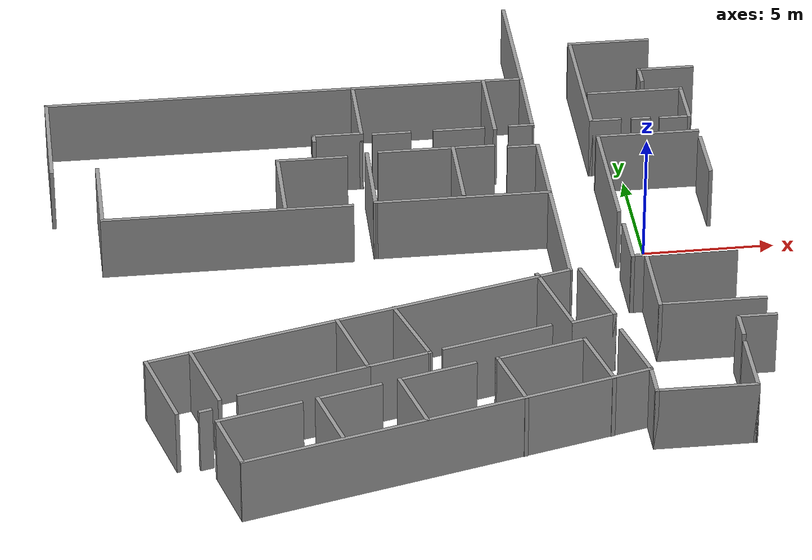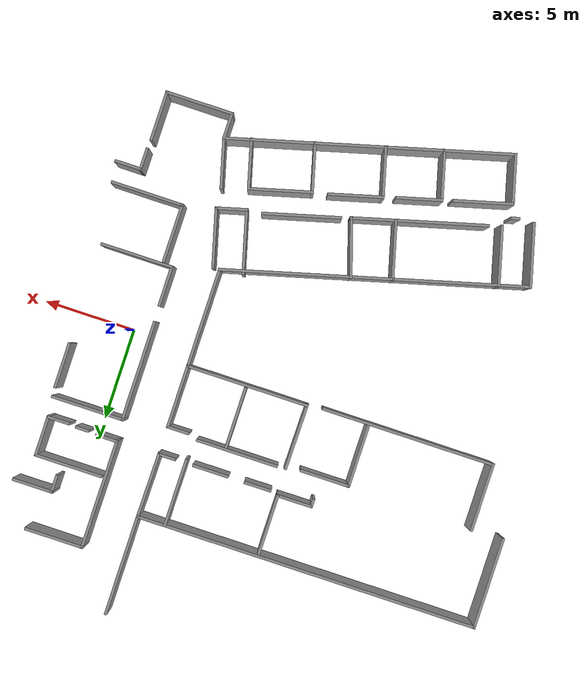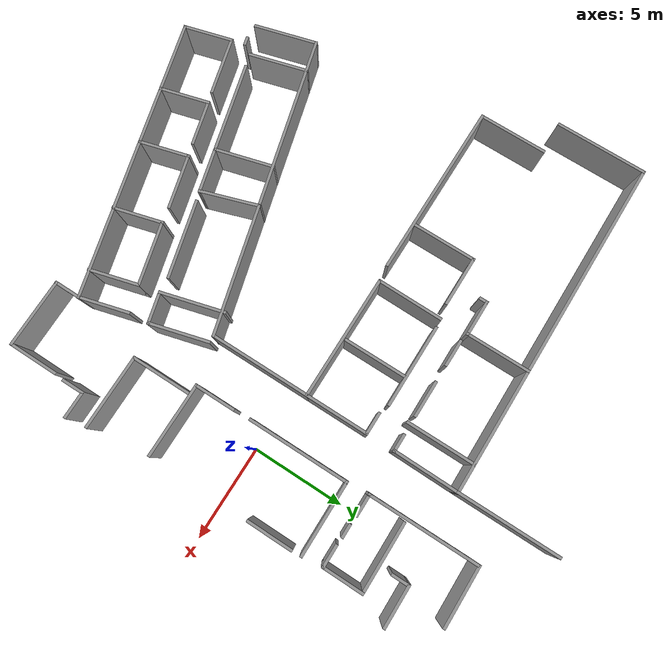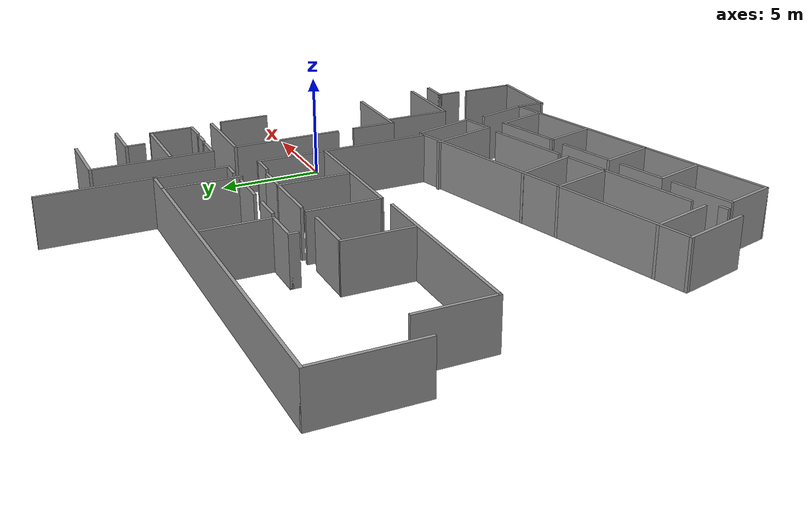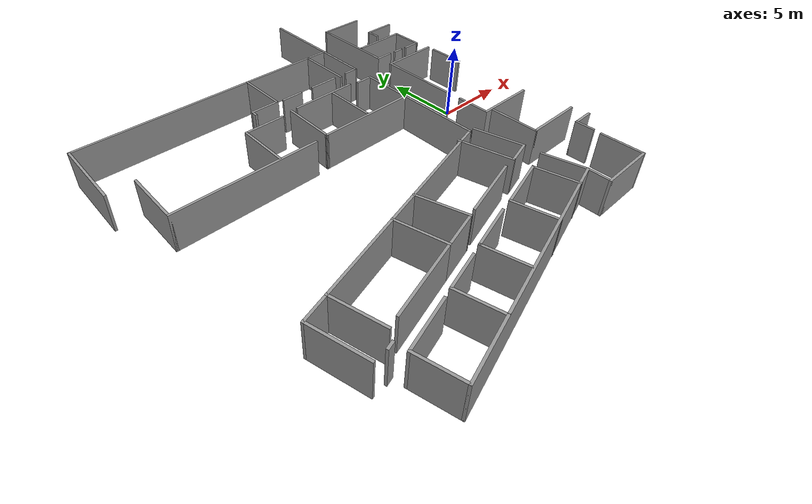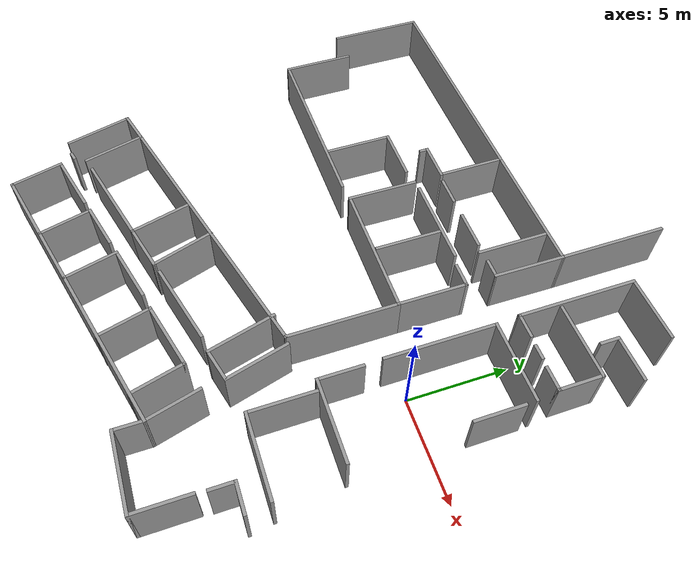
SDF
<sdf version="1.7">
 <model name="DohertyGazeboModel">
  <pose>0.626728 -0.28149 0 0 -0 0</pose>
  <link name="Wall_0">
   <collision name="Wall_0_Collision">
    <geometry><box><size>5 0.15 2.5</size></box></geometry>
    <pose>0 0 1.25 0 -0 0</pose>
   </collision>
   <visual name="Wall_0_Visual">
    <pose>0 0 1.25 0 -0 0</pose>
    <geometry><box><size>5 0.15 2.5</size></box></geometry>
    <material>
     <script><uri>file://media/materials/scripts/gazebo.material</uri><name>Gazebo/Grey</name></script>
     <ambient>1 1 1 1</ambient>
    </material>
    <meta><layer>0</layer></meta>
   </visual>
   <pose>-22.6913 7.0385 0 0 -0 1.5708</pose>
  </link>
  <link name="Wall_1">
   <collision name="Wall_1_Collision">
    <geometry><box><size>18.75 0.15 2.5</size></box></geometry>
    <pose>0 0 1.25 0 -0 0</pose>
   </collision>
   <visual name="Wall_1_Visual">
    <pose>0 0 1.25 0 -0 0</pose>
    <geometry><box><size>18.75 0.15 2.5</size></box></geometry>
    <material>
     <script><uri>file://media/materials/scripts/gazebo.material</uri><name>Gazebo/Grey</name></script>
     <ambient>1 1 1 1</ambient>
    </material>
    <meta><layer>0</layer></meta>
   </visual>
   <pose>-13.3913 9.4635 0 0 -0 0</pose>
  </link>
  <link name="Wall_10">
   <collision name="Wall_10_Collision">
    <geometry><box><size>3.75 0.15 2.5</size></box></geometry>
    <pose>0 0 1.25 0 -0 0</pose>
   </collision>
   <visual name="Wall_10_Visual">
    <pose>0 0 1.25 0 -0 0</pose>
    <geometry><box><size>3.75 0.15 2.5</size></box></geometry>
    <material>
     <script><uri>file://media/materials/scripts/gazebo.material</uri><name>Gazebo/Grey</name></script>
     <ambient>1 1 1 1</ambient>
    </material>
    <meta><layer>0</layer></meta>
   </visual>
   <pose>-20.9645 2.83778 0 0 -0 -1.5708</pose>
  </link>
  <link name="Wall_11">
   <collision name="Wall_11_Collision">
    <geometry><box><size>9.5 0.15 2.5</size></box></geometry>
    <pose>0 0 1.25 0 -0 0</pose>
   </collision>
   <visual name="Wall_11_Visual">
    <pose>0 0 1.25 0 -0 0</pose>
    <geometry><box><size>9.5 0.15 2.5</size></box></geometry>
    <material>
     <script><uri>file://media/materials/scripts/gazebo.material</uri><name>Gazebo/Grey</name></script>
     <ambient>1 1 1 1</ambient>
    </material>
    <meta><layer>0</layer></meta>
   </visual>
   <pose>-16.2895 1.03778 0 0 -0 0</pose>
  </link>
  <link name="Wall_116">
   <collision name="Wall_116_Collision">
    <geometry><box><size>1.25 0.15 2.5</size></box></geometry>
    <pose>0 0 1.25 0 -0 0</pose>
   </collision>
   <visual name="Wall_116_Visual">
    <pose>0 0 1.25 0 -0 0</pose>
    <geometry><box><size>1.25 0.15 2.5</size></box></geometry>
    <material>
     <script><uri>file://media/materials/scripts/gazebo.material</uri><name>Gazebo/Grey</name></script>
     <ambient>1 1 1 1</ambient>
    </material>
    <meta><layer>0</layer></meta>
   </visual>
   <pose>1.48424 -8.47099 0 0 -0 1.5708</pose>
  </link>
  <link name="Wall_117">
   <collision name="Wall_117_Collision">
    <geometry><box><size>1.5 0.15 2.5</size></box></geometry>
    <pose>0 0 1.25 0 -0 0</pose>
   </collision>
   <visual name="Wall_117_Visual">
    <pose>0 0 1.25 0 -0 0</pose>
    <geometry><box><size>1.5 0.15 2.5</size></box></geometry>
    <material>
     <script><uri>file://media/materials/scripts/gazebo.material</uri><name>Gazebo/Grey</name></script>
     <ambient>1 1 1 1</ambient>
    </material>
    <meta><layer>0</layer></meta>
   </visual>
   <pose>2.15924 -7.92099 0 0 -0 0</pose>
  </link>
  <link name="Wall_13">
   <collision name="Wall_13_Collision">
    <geometry><box><size>6.75 0.15 2.5</size></box></geometry>
    <pose>0 0 1.25 0 -0 0</pose>
   </collision>
   <visual name="Wall_13_Visual">
    <pose>0 0 1.25 0 -0 0</pose>
    <geometry><box><size>6.75 0.15 2.5</size></box></geometry>
    <material>
     <script><uri>file://media/materials/scripts/gazebo.material</uri><name>Gazebo/Grey</name></script>
     <ambient>1 1 1 1</ambient>
    </material>
    <meta><layer>0</layer></meta>
   </visual>
   <pose>-7.41613 1.1368 0 0 -0 0</pose>
  </link>
  <link name="Wall_130">
   <collision name="Wall_130_Collision">
    <geometry><box><size>2.25 0.15 2.5</size></box></geometry>
    <pose>0 0 1.25 0 -0 0</pose>
   </collision>
   <visual name="Wall_130_Visual">
    <pose>0 0 1.25 0 -0 0</pose>
    <geometry><box><size>2.25 0.15 2.5</size></box></geometry>
    <material>
     <script><uri>file://media/materials/scripts/gazebo.material</uri><name>Gazebo/Grey</name></script>
     <ambient>1 1 1 1</ambient>
    </material>
    <meta><layer>0</layer></meta>
   </visual>
   <pose>1.65333 9.64189 0 0 -0 3.14159</pose>
  </link>
  <link name="Wall_131">
   <collision name="Wall_131_Collision">
    <geometry><box><size>1 0.15 2.5</size></box></geometry>
    <pose>0 0 1.25 0 -0 0</pose>
   </collision>
   <visual name="Wall_131_Visual">
    <pose>0 0 1.25 0 -0 0</pose>
    <geometry><box><size>1 0.15 2.5</size></box></geometry>
    <material>
     <script><uri>file://media/materials/scripts/gazebo.material</uri><name>Gazebo/Grey</name></script>
     <ambient>1 1 1 1</ambient>
    </material>
    <meta><layer>0</layer></meta>
   </visual>
   <pose>0.603331 9.21689 0 0 -0 -1.5708</pose>
  </link>
  <link name="Wall_14">
   <collision name="Wall_14_Collision">
    <geometry><box><size>5.5 0.15 2.5</size></box></geometry>
    <pose>0 0 1.25 0 -0 0</pose>
   </collision>
   <visual name="Wall_14_Visual">
    <pose>0 0 1.25 0 -0 0</pose>
    <geometry><box><size>5.5 0.15 2.5</size></box></geometry>
    <material>
     <script><uri>file://media/materials/scripts/gazebo.material</uri><name>Gazebo/Grey</name></script>
     <ambient>1 1 1 1</ambient>
    </material>
    <meta><layer>0</layer></meta>
   </visual>
   <pose>-4.11613 -1.5382 0 0 -0 -1.5708</pose>
  </link>
  <link name="Wall_143">
   <collision name="Wall_143_Collision">
    <geometry><box><size>3.25 0.15 2.5</size></box></geometry>
    <pose>0 0 1.25 0 -0 0</pose>
   </collision>
   <visual name="Wall_143_Visual">
    <pose>0 0 1.25 0 -0 0</pose>
    <geometry><box><size>3.25 0.15 2.5</size></box></geometry>
    <material>
     <script><uri>file://media/materials/scripts/gazebo.material</uri><name>Gazebo/Grey</name></script>
     <ambient>1 1 1 1</ambient>
    </material>
    <meta><layer>0</layer></meta>
   </visual>
   <pose>-0.269694 11.9037 0 0 -0 3.14159</pose>
  </link>
  <link name="Wall_144">
   <collision name="Wall_144_Collision">
    <geometry><box><size>6 0.15 2.5</size></box></geometry>
    <pose>0 0 1.25 0 -0 0</pose>
   </collision>
   <visual name="Wall_144_Visual">
    <pose>0 0 1.25 0 -0 0</pose>
    <geometry><box><size>6 0.15 2.5</size></box></geometry>
    <material>
     <script><uri>file://media/materials/scripts/gazebo.material</uri><name>Gazebo/Grey</name></script>
     <ambient>1 1 1 1</ambient>
    </material>
    <meta><layer>0</layer></meta>
   </visual>
   <pose>-1.81969 8.9787 0 0 -0 -1.5708</pose>
  </link>
  <link name="Wall_145">
   <collision name="Wall_145_Collision">
    <geometry><box><size>1.25 0.15 2.5</size></box></geometry>
    <pose>0 0 1.25 0 -0 0</pose>
   </collision>
   <visual name="Wall_145_Visual">
    <pose>0 0 1.25 0 -0 0</pose>
    <geometry><box><size>1.25 0.15 2.5</size></box></geometry>
    <material>
     <script><uri>file://media/materials/scripts/gazebo.material</uri><name>Gazebo/Grey</name></script>
     <ambient>1 1 1 1</ambient>
    </material>
    <meta><layer>0</layer></meta>
   </visual>
   <pose>-1.26969 6.0537 0 0 -0 0</pose>
  </link>
  <link name="Wall_147">
   <collision name="Wall_147_Collision">
    <geometry><box><size>0.75 0.15 2.5</size></box></geometry>
    <pose>0 0 1.25 0 -0 0</pose>
   </collision>
   <visual name="Wall_147_Visual">
    <pose>0 0 1.25 0 -0 0</pose>
    <geometry><box><size>0.75 0.15 2.5</size></box></geometry>
    <material>
     <script><uri>file://media/materials/scripts/gazebo.material</uri><name>Gazebo/Grey</name></script>
     <ambient>1 1 1 1</ambient>
    </material>
    <meta><layer>0</layer></meta>
   </visual>
   <pose>0.115427 6.00233 0 0 -0 0</pose>
  </link>
  <link name="Wall_149">
   <collision name="Wall_149_Collision">
    <geometry><box><size>1.25 0.15 2.5</size></box></geometry>
    <pose>0 0 1.25 0 -0 0</pose>
   </collision>
   <visual name="Wall_149_Visual">
    <pose>0 0 1.25 0 -0 0</pose>
    <geometry><box><size>1.25 0.15 2.5</size></box></geometry>
    <material>
     <script><uri>file://media/materials/scripts/gazebo.material</uri><name>Gazebo/Grey</name></script>
     <ambient>1 1 1 1</ambient>
    </material>
    <meta><layer>0</layer></meta>
   </visual>
   <pose>1.45362 5.96048 0 0 -0 0</pose>
  </link>
  <link name="Wall_15">
   <collision name="Wall_15_Collision">
    <geometry><box><size>16.5 0.15 2.5</size></box></geometry>
    <pose>0 0 1.25 0 -0 0</pose>
   </collision>
   <visual name="Wall_15_Visual">
    <pose>0 0 1.25 0 -0 0</pose>
    <geometry><box><size>16.5 0.15 2.5</size></box></geometry>
    <material>
     <script><uri>file://media/materials/scripts/gazebo.material</uri><name>Gazebo/Grey</name></script>
     <ambient>1 1 1 1</ambient>
    </material>
    <meta><layer>0</layer></meta>
   </visual>
   <pose>-12.0126 -6.32905 0 0 -0 -2.87979</pose>
  </link>
  <link name="Wall_150">
   <collision name="Wall_150_Collision">
    <geometry><box><size>2.25 0.15 2.5</size></box></geometry>
    <pose>0 0 1.25 0 -0 0</pose>
   </collision>
   <visual name="Wall_150_Visual">
    <pose>0 0 1.25 0 -0 0</pose>
    <geometry><box><size>2.25 0.15 2.5</size></box></geometry>
    <material>
     <script><uri>file://media/materials/scripts/gazebo.material</uri><name>Gazebo/Grey</name></script>
     <ambient>1 1 1 1</ambient>
    </material>
    <meta><layer>0</layer></meta>
   </visual>
   <pose>2.00362 7.01048 0 0 -0 1.5708</pose>
  </link>
  <link name="Wall_151">
   <collision name="Wall_151_Collision">
    <geometry><box><size>3.75 0.15 2.5</size></box></geometry>
    <pose>0 0 1.25 0 -0 0</pose>
   </collision>
   <visual name="Wall_151_Visual">
    <pose>0 0 1.25 0 -0 0</pose>
    <geometry><box><size>3.75 0.15 2.5</size></box></geometry>
    <material>
     <script><uri>file://media/materials/scripts/gazebo.material</uri><name>Gazebo/Grey</name></script>
     <ambient>1 1 1 1</ambient>
    </material>
    <meta><layer>0</layer></meta>
   </visual>
   <pose>0.203623 8.06048 0 0 -0 3.14159</pose>
  </link>
  <link name="Wall_155">
   <collision name="Wall_155_Collision">
    <geometry><box><size>4 0.15 2.5</size></box></geometry>
    <pose>0 0 1.25 0 -0 0</pose>
   </collision>
   <visual name="Wall_155_Visual">
    <pose>0 0 1.25 0 -0 0</pose>
    <geometry><box><size>4 0.15 2.5</size></box></geometry>
    <material>
     <script><uri>file://media/materials/scripts/gazebo.material</uri><name>Gazebo/Grey</name></script>
     <ambient>1 1 1 1</ambient>
    </material>
    <meta><layer>0</layer></meta>
   </visual>
   <pose>0.19238 4.87228 0 0 -0 3.14159</pose>
  </link>
  <link name="Wall_156">
   <collision name="Wall_156_Collision">
    <geometry><box><size>5.5 0.15 2.5</size></box></geometry>
    <pose>0 0 1.25 0 -0 0</pose>
   </collision>
   <visual name="Wall_156_Visual">
    <pose>0 0 1.25 0 -0 0</pose>
    <geometry><box><size>5.5 0.15 2.5</size></box></geometry>
    <material>
     <script><uri>file://media/materials/scripts/gazebo.material</uri><name>Gazebo/Grey</name></script>
     <ambient>1 1 1 1</ambient>
    </material>
    <meta><layer>0</layer></meta>
   </visual>
   <pose>-1.73262 2.19728 0 0 -0 -1.5708</pose>
  </link>
  <link name="Wall_158">
   <collision name="Wall_158_Collision">
    <geometry><box><size>2.25 0.15 2.5</size></box></geometry>
    <pose>0 0 1.25 0 -0 0</pose>
   </collision>
   <visual name="Wall_158_Visual">
    <pose>0 0 1.25 0 -0 0</pose>
    <geometry><box><size>2.25 0.15 2.5</size></box></geometry>
    <material>
     <script><uri>file://media/materials/scripts/gazebo.material</uri><name>Gazebo/Grey</name></script>
     <ambient>1 1 1 1</ambient>
    </material>
    <meta><layer>0</layer></meta>
   </visual>
   <pose>-1.69131 -2.49763 0 0 -0 -1.5708</pose>
  </link>
  <link name="Wall_159">
   <collision name="Wall_159_Collision">
    <geometry><box><size>4 0.15 2.5</size></box></geometry>
    <pose>0 0 1.25 0 -0 0</pose>
   </collision>
   <visual name="Wall_159_Visual">
    <pose>0 0 1.25 0 -0 0</pose>
    <geometry><box><size>4 0.15 2.5</size></box></geometry>
    <material>
     <script><uri>file://media/materials/scripts/gazebo.material</uri><name>Gazebo/Grey</name></script>
     <ambient>1 1 1 1</ambient>
    </material>
    <meta><layer>0</layer></meta>
   </visual>
   <pose>0.233695 -3.54763 0 0 -0 0</pose>
  </link>
  <link name="Wall_16">
   <collision name="Wall_16_Collision">
    <geometry><box><size>3.5 0.15 2.5</size></box></geometry>
    <pose>0 0 1.25 0 -0 0</pose>
   </collision>
   <visual name="Wall_16_Visual">
    <pose>0 0 1.25 0 -0 0</pose>
    <geometry><box><size>3.5 0.15 2.5</size></box></geometry>
    <material>
     <script><uri>file://media/materials/scripts/gazebo.material</uri><name>Gazebo/Grey</name></script>
     <ambient>1 1 1 1</ambient>
    </material>
    <meta><layer>0</layer></meta>
   </visual>
   <pose>-19.4755 -10.0628 0 0 -0 -1.309</pose>
  </link>
  <link name="Wall_163">
   <collision name="Wall_163_Collision">
    <geometry><box><size>3.25 0.15 2.5</size></box></geometry>
    <pose>0 0 1.25 0 -0 0</pose>
   </collision>
   <visual name="Wall_163_Visual">
    <pose>0 0 1.25 0 -0 0</pose>
    <geometry><box><size>3.25 0.15 2.5</size></box></geometry>
    <material>
     <script><uri>file://media/materials/scripts/gazebo.material</uri><name>Gazebo/Grey</name></script>
     <ambient>1 1 1 1</ambient>
    </material>
    <meta><layer>0</layer></meta>
   </visual>
   <pose>-1.18906 -5.25772 0 0 -0 -1.5708</pose>
  </link>
  <link name="Wall_164">
   <collision name="Wall_164_Collision">
    <geometry><box><size>4 0.15 2.5</size></box></geometry>
    <pose>0 0 1.25 0 -0 0</pose>
   </collision>
   <visual name="Wall_164_Visual">
    <pose>0 0 1.25 0 -0 0</pose>
    <geometry><box><size>4 0.15 2.5</size></box></geometry>
    <material>
     <script><uri>file://media/materials/scripts/gazebo.material</uri><name>Gazebo/Grey</name></script>
     <ambient>1 1 1 1</ambient>
    </material>
    <meta><layer>0</layer></meta>
   </visual>
   <pose>0.735939 -6.80772 0 0 -0 0</pose>
  </link>
  <link name="Wall_168">
   <collision name="Wall_168_Collision">
    <geometry><box><size>2.5 0.15 2.5</size></box></geometry>
    <pose>0 0 1.25 0 -0 0</pose>
   </collision>
   <visual name="Wall_168_Visual">
    <pose>0 0 1.25 0 -0 0</pose>
    <geometry><box><size>2.5 0.15 2.5</size></box></geometry>
    <material>
     <script><uri>file://media/materials/scripts/gazebo.material</uri><name>Gazebo/Grey</name></script>
     <ambient>1 1 1 1</ambient>
    </material>
    <meta><layer>0</layer></meta>
   </visual>
   <pose>2.15923 3.15318 0 0 -0 -1.5708</pose>
  </link>
  <link name="Wall_18">
   <collision name="Wall_18_Collision">
    <geometry><box><size>3.5 0.15 2.5</size></box></geometry>
    <pose>0 0 1.25 0 -0 0</pose>
   </collision>
   <visual name="Wall_18_Visual">
    <pose>0 0 1.25 0 -0 0</pose>
    <geometry><box><size>3.5 0.15 2.5</size></box></geometry>
    <material>
     <script><uri>file://media/materials/scripts/gazebo.material</uri><name>Gazebo/Grey</name></script>
     <ambient>1 1 1 1</ambient>
    </material>
    <meta><layer>0</layer></meta>
   </visual>
   <pose>-14.1116 2.80424 0 0 -0 1.5708</pose>
  </link>
  <link name="Wall_19">
   <collision name="Wall_19_Collision">
    <geometry><box><size>2.75 0.15 2.5</size></box></geometry>
    <pose>0 0 1.25 0 -0 0</pose>
   </collision>
   <visual name="Wall_19_Visual">
    <pose>0 0 1.25 0 -0 0</pose>
    <geometry><box><size>2.75 0.15 2.5</size></box></geometry>
    <material>
     <script><uri>file://media/materials/scripts/gazebo.material</uri><name>Gazebo/Grey</name></script>
     <ambient>1 1 1 1</ambient>
    </material>
    <meta><layer>0</layer></meta>
   </visual>
   <pose>-12.8116 4.47924 0 0 -0 0</pose>
  </link>
  <link name="Wall_2">
   <collision name="Wall_2_Collision">
    <geometry><box><size>5.5 0.15 2.5</size></box></geometry>
    <pose>0 0 1.25 0 -0 0</pose>
   </collision>
   <visual name="Wall_2_Visual">
    <pose>0 0 1.25 0 -0 0</pose>
    <geometry><box><size>5.5 0.15 2.5</size></box></geometry>
    <material>
     <script><uri>file://media/materials/scripts/gazebo.material</uri><name>Gazebo/Grey</name></script>
     <ambient>1 1 1 1</ambient>
    </material>
    <meta><layer>0</layer></meta>
   </visual>
   <pose>-4.09132 12.1385 0 0 -0 1.5708</pose>
  </link>
  <link name="Wall_21">
   <collision name="Wall_21_Collision">
    <geometry><box><size>3.62977 0.15 2.5</size></box></geometry>
    <pose>0 0 1.25 0 -0 0</pose>
   </collision>
   <visual name="Wall_21_Visual">
    <pose>0 0 1.25 0 -0 0</pose>
    <geometry><box><size>3.62977 0.15 2.5</size></box></geometry>
    <material>
     <script><uri>file://media/materials/scripts/gazebo.material</uri><name>Gazebo/Grey</name></script>
     <ambient>1 1 1 1</ambient>
    </material>
    <meta><layer>0</layer></meta>
   </visual>
   <pose>-10.698 2.87659 0 0 -0 -1.58124</pose>
  </link>
  <link name="Wall_23">
   <collision name="Wall_23_Collision">
    <geometry><box><size>4.5 0.15 2.5</size></box></geometry>
    <pose>0 0 1.25 0 -0 0</pose>
   </collision>
   <visual name="Wall_23_Visual">
    <pose>0 0 1.25 0 -0 0</pose>
    <geometry><box><size>4.5 0.15 2.5</size></box></geometry>
    <material>
     <script><uri>file://media/materials/scripts/gazebo.material</uri><name>Gazebo/Grey</name></script>
     <ambient>1 1 1 1</ambient>
    </material>
    <meta><layer>0</layer></meta>
   </visual>
   <pose>-8.00662 4.67173 0 0 -0 0</pose>
  </link>
  <link name="Wall_25">
   <collision name="Wall_25_Collision">
    <geometry><box><size>3.5 0.15 2.5</size></box></geometry>
    <pose>0 0 1.25 0 -0 0</pose>
   </collision>
   <visual name="Wall_25_Visual">
    <pose>0 0 1.25 0 -0 0</pose>
    <geometry><box><size>3.5 0.15 2.5</size></box></geometry>
    <material>
     <script><uri>file://media/materials/scripts/gazebo.material</uri><name>Gazebo/Grey</name></script>
     <ambient>1 1 1 1</ambient>
    </material>
    <meta><layer>0</layer></meta>
   </visual>
   <pose>-7.35869 2.99673 0 0 -0 -1.5708</pose>
  </link>
  <link name="Wall_27">
   <collision name="Wall_27_Collision">
    <geometry><box><size>1 0.15 2.5</size></box></geometry>
    <pose>0 0 1.25 0 -0 0</pose>
   </collision>
   <visual name="Wall_27_Visual">
    <pose>0 0 1.25 0 -0 0</pose>
    <geometry><box><size>1 0.15 2.5</size></box></geometry>
    <material>
     <script><uri>file://media/materials/scripts/gazebo.material</uri><name>Gazebo/Grey</name></script>
     <ambient>1 1 1 1</ambient>
    </material>
    <meta><layer>0</layer></meta>
   </visual>
   <pose>-4.55358 6.00017 0 0 -0 0</pose>
  </link>
  <link name="Wall_28">
   <collision name="Wall_28_Collision">
    <geometry><box><size>3.61354 0.15 2.5</size></box></geometry>
    <pose>0 0 1.25 0 -0 0</pose>
   </collision>
   <visual name="Wall_28_Visual">
    <pose>0 0 1.25 0 -0 0</pose>
    <geometry><box><size>3.61354 0.15 2.5</size></box></geometry>
    <material>
     <script><uri>file://media/materials/scripts/gazebo.material</uri><name>Gazebo/Grey</name></script>
     <ambient>1 1 1 1</ambient>
    </material>
    <meta><layer>0</layer></meta>
   </visual>
   <pose>-4.10995 7.73184 0 0 -0 1.56004</pose>
  </link>
  <link name="Wall_30">
   <collision name="Wall_30_Collision">
    <geometry><box><size>3.5 0.15 2.5</size></box></geometry>
    <pose>0 0 1.25 0 -0 0</pose>
   </collision>
   <visual name="Wall_30_Visual">
    <pose>0 0 1.25 0 -0 0</pose>
    <geometry><box><size>3.5 0.15 2.5</size></box></geometry>
    <material>
     <script><uri>file://media/materials/scripts/gazebo.material</uri><name>Gazebo/Grey</name></script>
     <ambient>1 1 1 1</ambient>
    </material>
    <meta><layer>0</layer></meta>
   </visual>
   <pose>-10.7412 7.78659 0 0 -0 -1.5708</pose>
  </link>
  <link name="Wall_31">
   <collision name="Wall_31_Collision">
    <geometry><box><size>2 0.15 2.5</size></box></geometry>
    <pose>0 0 1.25 0 -0 0</pose>
   </collision>
   <visual name="Wall_31_Visual">
    <pose>0 0 1.25 0 -0 0</pose>
    <geometry><box><size>2 0.15 2.5</size></box></geometry>
    <material>
     <script><uri>file://media/materials/scripts/gazebo.material</uri><name>Gazebo/Grey</name></script>
     <ambient>1 1 1 1</ambient>
    </material>
    <meta><layer>0</layer></meta>
   </visual>
   <pose>-11.6662 6.11159 0 0 -0 3.14159</pose>
  </link>
  <link name="Wall_32">
   <collision name="Wall_32_Collision">
    <geometry><box><size>0.5 0.15 2.5</size></box></geometry>
    <pose>0 0 1.25 0 -0 0</pose>
   </collision>
   <visual name="Wall_32_Visual">
    <pose>0 0 1.25 0 -0 0</pose>
    <geometry><box><size>0.5 0.15 2.5</size></box></geometry>
    <material>
     <script><uri>file://media/materials/scripts/gazebo.material</uri><name>Gazebo/Grey</name></script>
     <ambient>1 1 1 1</ambient>
    </material>
    <meta><layer>0</layer></meta>
   </visual>
   <pose>-12.5912 5.93659 0 0 -0 -1.5708</pose>
  </link>
  <link name="Wall_34">
   <collision name="Wall_34_Collision">
    <geometry><box><size>1.5 0.15 2.5</size></box></geometry>
    <pose>0 0 1.25 0 -0 0</pose>
   </collision>
   <visual name="Wall_34_Visual">
    <pose>0 0 1.25 0 -0 0</pose>
    <geometry><box><size>1.5 0.15 2.5</size></box></geometry>
    <material>
     <script><uri>file://media/materials/scripts/gazebo.material</uri><name>Gazebo/Grey</name></script>
     <ambient>1 1 1 1</ambient>
    </material>
    <meta><layer>0</layer></meta>
   </visual>
   <pose>-9.5849 5.99611 0 0 -0 0</pose>
  </link>
  <link name="Wall_36">
   <collision name="Wall_36_Collision">
    <geometry><box><size>2 0.15 2.5</size></box></geometry>
    <pose>0 0 1.25 0 -0 0</pose>
   </collision>
   <visual name="Wall_36_Visual">
    <pose>0 0 1.25 0 -0 0</pose>
    <geometry><box><size>2 0.15 2.5</size></box></geometry>
    <material>
     <script><uri>file://media/materials/scripts/gazebo.material</uri><name>Gazebo/Grey</name></script>
     <ambient>1 1 1 1</ambient>
    </material>
    <meta><layer>0</layer></meta>
   </visual>
   <pose>-6.97644 5.99611 0 0 -0 0</pose>
  </link>
  <link name="Wall_38">
   <collision name="Wall_38_Collision">
    <geometry><box><size>3.75 0.15 2.5</size></box></geometry>
    <pose>0 0 1.25 0 -0 0</pose>
   </collision>
   <visual name="Wall_38_Visual">
    <pose>0 0 1.25 0 -0 0</pose>
    <geometry><box><size>3.75 0.15 2.5</size></box></geometry>
    <material>
     <script><uri>file://media/materials/scripts/gazebo.material</uri><name>Gazebo/Grey</name></script>
     <ambient>1 1 1 1</ambient>
    </material>
    <meta><layer>0</layer></meta>
   </visual>
   <pose>-5.59112 7.66159 0 0 -0 -1.5708</pose>
  </link>
  <link name="Wall_40">
   <collision name="Wall_40_Collision">
    <geometry><box><size>3.5 0.15 2.5</size></box></geometry>
    <pose>0 0 1.25 0 -0 0</pose>
   </collision>
   <visual name="Wall_40_Visual">
    <pose>0 0 1.25 0 -0 0</pose>
    <geometry><box><size>3.5 0.15 2.5</size></box></geometry>
    <material>
     <script><uri>file://media/materials/scripts/gazebo.material</uri><name>Gazebo/Grey</name></script>
     <ambient>1 1 1 1</ambient>
    </material>
    <meta><layer>0</layer></meta>
   </visual>
   <pose>-4.11613 2.8118 0 0 -0 1.5708</pose>
  </link>
  <link name="Wall_41">
   <collision name="Wall_41_Collision">
    <geometry><box><size>1.25 0.15 2.5</size></box></geometry>
    <pose>0 0 1.25 0 -0 0</pose>
   </collision>
   <visual name="Wall_41_Visual">
    <pose>0 0 1.25 0 -0 0</pose>
    <geometry><box><size>1.25 0.15 2.5</size></box></geometry>
    <material>
     <script><uri>file://media/materials/scripts/gazebo.material</uri><name>Gazebo/Grey</name></script>
     <ambient>1 1 1 1</ambient>
    </material>
    <meta><layer>0</layer></meta>
   </visual>
   <pose>-4.66613 4.4868 0 0 -0 3.14159</pose>
  </link>
  <link name="Wall_61">
   <collision name="Wall_61_Collision">
    <geometry><box><size>0.5 0.15 2.5</size></box></geometry>
    <pose>0 0 1.25 0 -0 0</pose>
   </collision>
   <visual name="Wall_61_Visual">
    <pose>0 0 1.25 0 -0 0</pose>
    <geometry><box><size>0.5 0.15 2.5</size></box></geometry>
    <material>
     <script><uri>file://media/materials/scripts/gazebo.material</uri><name>Gazebo/Grey</name></script>
     <ambient>1 1 1 1</ambient>
    </material>
    <meta><layer>0</layer></meta>
   </visual>
   <pose>-18.0326 -11.6229 0 0 -0 0.261799</pose>
  </link>
  <link name="Wall_63">
   <collision name="Wall_63_Collision">
    <geometry><box><size>15.5 0.15 2.5</size></box></geometry>
    <pose>0 0 1.25 0 -0 0</pose>
   </collision>
   <visual name="Wall_63_Visual">
    <pose>0 0 1.25 0 -0 0</pose>
    <geometry><box><size>15.5 0.15 2.5</size></box></geometry>
    <material>
     <script><uri>file://media/materials/scripts/gazebo.material</uri><name>Gazebo/Grey</name></script>
     <ambient>1 1 1 1</ambient>
    </material>
    <meta><layer>0</layer></meta>
   </visual>
   <pose>-9.58304 -12.8271 0 0 -0 0.261799</pose>
  </link>
  <link name="Wall_64">
   <collision name="Wall_64_Collision">
    <geometry><box><size>2.75 0.15 2.5</size></box></geometry>
    <pose>0 0 1.25 0 -0 0</pose>
   </collision>
   <visual name="Wall_64_Visual">
    <pose>0 0 1.25 0 -0 0</pose>
    <geometry><box><size>2.75 0.15 2.5</size></box></geometry>
    <material>
     <script><uri>file://media/materials/scripts/gazebo.material</uri><name>Gazebo/Grey</name></script>
     <ambient>1 1 1 1</ambient>
    </material>
    <meta><layer>0</layer></meta>
   </visual>
   <pose>-2.50602 -9.58493 0 0 -0 1.8326</pose>
  </link>
  <link name="Wall_66">
   <collision name="Wall_66_Collision">
    <geometry><box><size>3.25 0.15 2.5</size></box></geometry>
    <pose>0 0 1.25 0 -0 0</pose>
   </collision>
   <visual name="Wall_66_Visual">
    <pose>0 0 1.25 0 -0 0</pose>
    <geometry><box><size>3.25 0.15 2.5</size></box></geometry>
    <material>
     <script><uri>file://media/materials/scripts/gazebo.material</uri><name>Gazebo/Grey</name></script>
     <ambient>1 1 1 1</ambient>
    </material>
    <meta><layer>0</layer></meta>
   </visual>
   <pose>-12.506 -8.06346 0 0 -0 -1.309</pose>
  </link>
  <link name="Wall_67">
   <collision name="Wall_67_Collision">
    <geometry><box><size>5 0.15 2.5</size></box></geometry>
    <pose>0 0 1.25 0 -0 0</pose>
   </collision>
   <visual name="Wall_67_Visual">
    <pose>0 0 1.25 0 -0 0</pose>
    <geometry><box><size>5 0.15 2.5</size></box></geometry>
    <material>
     <script><uri>file://media/materials/scripts/gazebo.material</uri><name>Gazebo/Grey</name></script>
     <ambient>1 1 1 1</ambient>
    </material>
    <meta><layer>0</layer></meta>
   </visual>
   <pose>-14.4472 -10.1883 0 0 -0 -2.87979</pose>
  </link>
  <link name="Wall_69">
   <collision name="Wall_69_Collision">
    <geometry><box><size>3.25 0.15 2.5</size></box></geometry>
    <pose>0 0 1.25 0 -0 0</pose>
   </collision>
   <visual name="Wall_69_Visual">
    <pose>0 0 1.25 0 -0 0</pose>
    <geometry><box><size>3.25 0.15 2.5</size></box></geometry>
    <material>
     <script><uri>file://media/materials/scripts/gazebo.material</uri><name>Gazebo/Grey</name></script>
     <ambient>1 1 1 1</ambient>
    </material>
    <meta><layer>0</layer></meta>
   </visual>
   <pose>-17.8967 -9.50741 0 0 -0 -1.309</pose>
  </link>
  <link name="Wall_72">
   <collision name="Wall_72_Collision">
    <geometry><box><size>2.75 0.15 2.5</size></box></geometry>
    <pose>0 0 1.25 0 -0 0</pose>
   </collision>
   <visual name="Wall_72_Visual">
    <pose>0 0 1.25 0 -0 0</pose>
    <geometry><box><size>2.75 0.15 2.5</size></box></geometry>
    <material>
     <script><uri>file://media/materials/scripts/gazebo.material</uri><name>Gazebo/Grey</name></script>
     <ambient>1 1 1 1</ambient>
    </material>
    <meta><layer>0</layer></meta>
   </visual>
   <pose>-17.333 -13.5578 0 0 -0 1.8326</pose>
  </link>
  <link name="Wall_73">
   <collision name="Wall_73_Collision">
    <geometry><box><size>3.25 0.15 2.5</size></box></geometry>
    <pose>0 0 1.25 0 -0 0</pose>
   </collision>
   <visual name="Wall_73_Visual">
    <pose>0 0 1.25 0 -0 0</pose>
    <geometry><box><size>3.25 0.15 2.5</size></box></geometry>
    <material>
     <script><uri>file://media/materials/scripts/gazebo.material</uri><name>Gazebo/Grey</name></script>
     <ambient>1 1 1 1</ambient>
    </material>
    <meta><layer>0</layer></meta>
   </visual>
   <pose>-16.1723 -11.9009 0 0 -0 0.261799</pose>
  </link>
  <link name="Wall_75">
   <collision name="Wall_75_Collision">
    <geometry><box><size>2.75 0.15 2.5</size></box></geometry>
    <pose>0 0 1.25 0 -0 0</pose>
   </collision>
   <visual name="Wall_75_Visual">
    <pose>0 0 1.25 0 -0 0</pose>
    <geometry><box><size>2.75 0.15 2.5</size></box></geometry>
    <material>
     <script><uri>file://media/materials/scripts/gazebo.material</uri><name>Gazebo/Grey</name></script>
     <ambient>1 1 1 1</ambient>
    </material>
    <meta><layer>0</layer></meta>
   </visual>
   <pose>-13.7249 -12.5785 0 0 -0 1.8326</pose>
  </link>
  <link name="Wall_76">
   <collision name="Wall_76_Collision">
    <geometry><box><size>2.5 0.15 2.5</size></box></geometry>
    <pose>0 0 1.25 0 -0 0</pose>
   </collision>
   <visual name="Wall_76_Visual">
    <pose>0 0 1.25 0 -0 0</pose>
    <geometry><box><size>2.5 0.15 2.5</size></box></geometry>
    <material>
     <script><uri>file://media/materials/scripts/gazebo.material</uri><name>Gazebo/Grey</name></script>
     <ambient>1 1 1 1</ambient>
    </material>
    <meta><layer>0</layer></meta>
   </visual>
   <pose>-12.9264 -11.0186 0 0 -0 0.261799</pose>
  </link>
  <link name="Wall_78">
   <collision name="Wall_78_Collision">
    <geometry><box><size>2.75 0.15 2.5</size></box></geometry>
    <pose>0 0 1.25 0 -0 0</pose>
   </collision>
   <visual name="Wall_78_Visual">
    <pose>0 0 1.25 0 -0 0</pose>
    <geometry><box><size>2.75 0.15 2.5</size></box></geometry>
    <material>
     <script><uri>file://media/materials/scripts/gazebo.material</uri><name>Gazebo/Grey</name></script>
     <ambient>1 1 1 1</ambient>
    </material>
    <meta><layer>0</layer></meta>
   </visual>
   <pose>-10.7408 -11.7602 0 0 -0 1.8326</pose>
  </link>
  <link name="Wall_79">
   <collision name="Wall_79_Collision">
    <geometry><box><size>3 0.15 2.5</size></box></geometry>
    <pose>0 0 1.25 0 -0 0</pose>
   </collision>
   <visual name="Wall_79_Visual">
    <pose>0 0 1.25 0 -0 0</pose>
    <geometry><box><size>3 0.15 2.5</size></box></geometry>
    <material>
     <script><uri>file://media/materials/scripts/gazebo.material</uri><name>Gazebo/Grey</name></script>
     <ambient>1 1 1 1</ambient>
    </material>
    <meta><layer>0</layer></meta>
   </visual>
   <pose>-9.70078 -10.1357 0 0 -0 0.261799</pose>
  </link>
  <link name="Wall_81">
   <collision name="Wall_81_Collision">
    <geometry><box><size>2.75 0.15 2.5</size></box></geometry>
    <pose>0 0 1.25 0 -0 0</pose>
   </collision>
   <visual name="Wall_81_Visual">
    <pose>0 0 1.25 0 -0 0</pose>
    <geometry><box><size>2.75 0.15 2.5</size></box></geometry>
    <material>
     <script><uri>file://media/materials/scripts/gazebo.material</uri><name>Gazebo/Grey</name></script>
     <ambient>1 1 1 1</ambient>
    </material>
    <meta><layer>0</layer></meta>
   </visual>
   <pose>-7.13088 -10.8457 0 0 -0 1.8326</pose>
  </link>
  <link name="Wall_82">
   <collision name="Wall_82_Collision">
    <geometry><box><size>3.5 0.15 2.5</size></box></geometry>
    <pose>0 0 1.25 0 -0 0</pose>
   </collision>
   <visual name="Wall_82_Visual">
    <pose>0 0 1.25 0 -0 0</pose>
    <geometry><box><size>3.5 0.15 2.5</size></box></geometry>
    <material>
     <script><uri>file://media/materials/scripts/gazebo.material</uri><name>Gazebo/Grey</name></script>
     <ambient>1 1 1 1</ambient>
    </material>
    <meta><layer>0</layer></meta>
   </visual>
   <pose>-5.84942 -9.15649 0 0 -0 0.261799</pose>
  </link>
  <link name="Wall_83">
   <collision name="Wall_83_Collision">
    <geometry><box><size>2.75 0.15 2.5</size></box></geometry>
    <pose>0 0 1.25 0 -0 0</pose>
   </collision>
   <visual name="Wall_83_Visual">
    <pose>0 0 1.25 0 -0 0</pose>
    <geometry><box><size>2.75 0.15 2.5</size></box></geometry>
    <material>
     <script><uri>file://media/materials/scripts/gazebo.material</uri><name>Gazebo/Grey</name></script>
     <ambient>1 1 1 1</ambient>
    </material>
    <meta><layer>0</layer></meta>
   </visual>
   <pose>-3.89503 -9.97868 0 0 -0 -1.309</pose>
  </link>
  <link name="Wall_85">
   <collision name="Wall_85_Collision">
    <geometry><box><size>2.5 0.15 2.5</size></box></geometry>
    <pose>0 0 1.25 0 -0 0</pose>
   </collision>
   <visual name="Wall_85_Visual">
    <pose>0 0 1.25 0 -0 0</pose>
    <geometry><box><size>2.5 0.15 2.5</size></box></geometry>
    <material>
     <script><uri>file://media/materials/scripts/gazebo.material</uri><name>Gazebo/Grey</name></script>
     <ambient>1 1 1 1</ambient>
    </material>
    <meta><layer>0</layer></meta>
   </visual>
   <pose>-10.9698 -9.25653 0 0 -0 0.261799</pose>
  </link>
  <link name="Wall_87">
   <collision name="Wall_87_Collision">
    <geometry><box><size>3.26363 0.15 2.5</size></box></geometry>
    <pose>0 0 1.25 0 -0 0</pose>
   </collision>
   <visual name="Wall_87_Visual">
    <pose>0 0 1.25 0 -0 0</pose>
    <geometry><box><size>3.26363 0.15 2.5</size></box></geometry>
    <material>
     <script><uri>file://media/materials/scripts/gazebo.material</uri><name>Gazebo/Grey</name></script>
     <ambient>1 1 1 1</ambient>
    </material>
    <meta><layer>0</layer></meta>
   </visual>
   <pose>-10.3121 -7.47056 0 0 -0 -1.25924</pose>
  </link>
  <link name="Wall_89">
   <collision name="Wall_89_Collision">
    <geometry><box><size>4.25 0.15 2.5</size></box></geometry>
    <pose>0 0 1.25 0 -0 0</pose>
   </collision>
   <visual name="Wall_89_Visual">
    <pose>0 0 1.25 0 -0 0</pose>
    <geometry><box><size>4.25 0.15 2.5</size></box></geometry>
    <material>
     <script><uri>file://media/materials/scripts/gazebo.material</uri><name>Gazebo/Grey</name></script>
     <ambient>1 1 1 1</ambient>
    </material>
    <meta><layer>0</layer></meta>
   </visual>
   <pose>-7.31712 -8.24976 0 0 -0 0.261799</pose>
  </link>
  <link name="Wall_91">
   <collision name="Wall_91_Collision">
    <geometry><box><size>3.5 0.15 2.5</size></box></geometry>
    <pose>0 0 1.25 0 -0 0</pose>
   </collision>
   <visual name="Wall_91_Visual">
    <pose>0 0 1.25 0 -0 0</pose>
    <geometry><box><size>3.5 0.15 2.5</size></box></geometry>
    <material>
     <script><uri>file://media/materials/scripts/gazebo.material</uri><name>Gazebo/Grey</name></script>
     <ambient>1 1 1 1</ambient>
    </material>
    <meta><layer>0</layer></meta>
   </visual>
   <pose>-4.91694 -6.01827 0 0 -0 -1.309</pose>
  </link>
  <link name="Wall_92">
   <collision name="Wall_92_Collision">
    <geometry><box><size>1.75 0.15 2.5</size></box></geometry>
    <pose>0 0 1.25 0 -0 0</pose>
   </collision>
   <visual name="Wall_92_Visual">
    <pose>0 0 1.25 0 -0 0</pose>
    <geometry><box><size>1.75 0.15 2.5</size></box></geometry>
    <material>
     <script><uri>file://media/materials/scripts/gazebo.material</uri><name>Gazebo/Grey</name></script>
     <ambient>1 1 1 1</ambient>
    </material>
    <meta><layer>0</layer></meta>
   </visual>
   <pose>-3.71068 -7.42914 0 0 -0 0.261799</pose>
  </link>
  <link name="Wall_93">
   <collision name="Wall_93_Collision">
    <geometry><box><size>3.25 0.15 2.5</size></box></geometry>
    <pose>0 0 1.25 0 -0 0</pose>
   </collision>
   <visual name="Wall_93_Visual">
    <pose>0 0 1.25 0 -0 0</pose>
    <geometry><box><size>3.25 0.15 2.5</size></box></geometry>
    <material>
     <script><uri>file://media/materials/scripts/gazebo.material</uri><name>Gazebo/Grey</name></script>
     <ambient>1 1 1 1</ambient>
    </material>
    <meta><layer>0</layer></meta>
   </visual>
   <pose>-3.33911 -5.7249 0 0 -0 1.8326</pose>
  </link>
  <link name="Wall_95">
   <collision name="Wall_95_Collision">
    <geometry><box><size>1.5 0.15 2.5</size></box></geometry>
    <pose>0 0 1.25 0 -0 0</pose>
   </collision>
   <visual name="Wall_95_Visual">
    <pose>0 0 1.25 0 -0 0</pose>
    <geometry><box><size>1.5 0.15 2.5</size></box></geometry>
    <material>
     <script><uri>file://media/materials/scripts/gazebo.material</uri><name>Gazebo/Grey</name></script>
     <ambient>1 1 1 1</ambient>
    </material>
    <meta><layer>0</layer></meta>
   </visual>
   <pose>-2.16955 -11.5156 0 0 -0 -1.5708</pose>
  </link>
  <link name="Wall_96">
   <collision name="Wall_96_Collision">
    <geometry><box><size>3.75 0.15 2.5</size></box></geometry>
    <pose>0 0 1.25 0 -0 0</pose>
   </collision>
   <visual name="Wall_96_Visual">
    <pose>0 0 1.25 0 -0 0</pose>
    <geometry><box><size>3.75 0.15 2.5</size></box></geometry>
    <material>
     <script><uri>file://media/materials/scripts/gazebo.material</uri><name>Gazebo/Grey</name></script>
     <ambient>1 1 1 1</ambient>
    </material>
    <meta><layer>0</layer></meta>
   </visual>
   <pose>-0.369555 -12.1906 0 0 -0 0</pose>
  </link>
  <link name="Wall_97">
   <collision name="Wall_97_Collision">
    <geometry><box><size>2.75 0.15 2.5</size></box></geometry>
    <pose>0 0 1.25 0 -0 0</pose>
   </collision>
   <visual name="Wall_97_Visual">
    <pose>0 0 1.25 0 -0 0</pose>
    <geometry><box><size>2.75 0.15 2.5</size></box></geometry>
    <material>
     <script><uri>file://media/materials/scripts/gazebo.material</uri><name>Gazebo/Grey</name></script>
     <ambient>1 1 1 1</ambient>
    </material>
    <meta><layer>0</layer></meta>
   </visual>
   <pose>1.43044 -10.8906 0 0 -0 1.5708</pose>
  </link>
  <static>1</static>
 </model>
</sdf>
